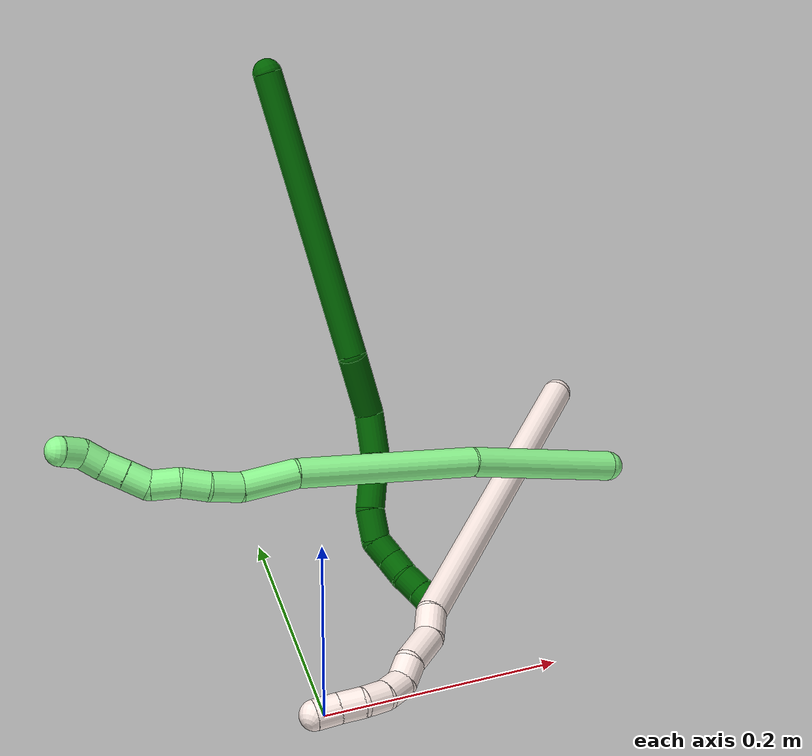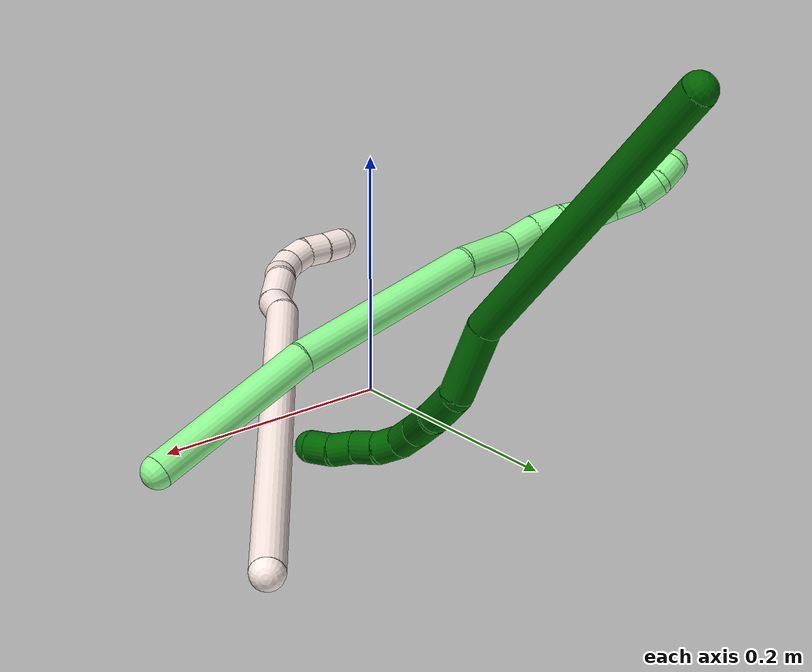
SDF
<sdf version="1.7">
 <world name="default">
  <model name="6">
   <static>0</static>
   <link name="6">
    <collision name="collision-cylinder-e_1_1_4">
     <pose>0.000419 0.022168 -0.123167 -2.96352 0.003348 -0.037497</pose>
     <geometry><cylinder><radius>0.0125</radius><length>0.250293</length></cylinder></geometry>
     <surface>
      <friction><ode><mu>1.16</mu><mu2>1.16</mu2><slip1>0</slip1><slip2>0</slip2></ode></friction>
      <contact><ode><kp>1e+06</kp><kd>1</kd><max_vel>0</max_vel><min_depth>0.001</min_depth></ode></contact>
     </surface>
    </collision>
    <visual name="visual-cylinder-e_1_1_4">
     <pose>0.000419 0.022168 -0.123167 -2.96352 0.003348 -0.037497</pose>
     <geometry><cylinder><radius>0.0125</radius><length>0.250293</length></cylinder></geometry>
     <material><ambient>0 0.392157 0.003922 1</ambient></material>
    </visual>
    <collision name="collision-cylinder-e_2_4_5">
     <pose>0.006885 0.057439 -0.271116 -2.65522 0.21246 -0.811854</pose>
     <geometry><cylinder><radius>0.0125</radius><length>0.057354</length></cylinder></geometry>
     <surface>
      <friction><ode><mu>1.16</mu><mu2>1.16</mu2><slip1>0</slip1><slip2>0</slip2></ode></friction>
      <contact><ode><kp>1e+06</kp><kd>1</kd><max_vel>0</max_vel><min_depth>0.001</min_depth></ode></contact>
     </surface>
    </collision>
    <visual name="visual-cylinder-e_2_4_5">
     <pose>0.006885 0.057439 -0.271116 -2.65522 0.21246 -0.811854</pose>
     <geometry><cylinder><radius>0.0125</radius><length>0.057354</length></cylinder></geometry>
     <material><ambient>0 0.392157 0.003922 1</ambient></material>
    </visual>
    <collision name="collision-cylinder-e_3_5_6">
     <pose>0.009528 0.07331 -0.313328 -2.9841 -0.190529 1.761</pose>
     <geometry><cylinder><radius>0.0125</radius><length>0.035949</length></cylinder></geometry>
     <surface>
      <friction><ode><mu>1.16</mu><mu2>1.16</mu2><slip1>0</slip1><slip2>0</slip2></ode></friction>
      <contact><ode><kp>1e+06</kp><kd>1</kd><max_vel>0</max_vel><min_depth>0.001</min_depth></ode></contact>
     </surface>
    </collision>
    <visual name="visual-cylinder-e_3_5_6">
     <pose>0.009528 0.07331 -0.313328 -2.9841 -0.190529 1.761</pose>
     <geometry><cylinder><radius>0.0125</radius><length>0.035949</length></cylinder></geometry>
     <material><ambient>0 0.392157 0.003922 1</ambient></material>
    </visual>
    <collision name="collision-cylinder-e_4_6_7">
     <pose>-0.005551 0.079002 -0.352067 -3.00525 -0.497307 2.61621</pose>
     <geometry><cylinder><radius>0.0125</radius><length>0.048944</length></cylinder></geometry>
     <surface>
      <friction><ode><mu>1.16</mu><mu2>1.16</mu2><slip1>0</slip1><slip2>0</slip2></ode></friction>
      <contact><ode><kp>1e+06</kp><kd>1</kd><max_vel>0</max_vel><min_depth>0.001</min_depth></ode></contact>
     </surface>
    </collision>
    <visual name="visual-cylinder-e_4_6_7">
     <pose>-0.005551 0.079002 -0.352067 -3.00525 -0.497307 2.61621</pose>
     <geometry><cylinder><radius>0.0125</radius><length>0.048944</length></cylinder></geometry>
     <material><ambient>0 0.392157 0.003922 1</ambient></material>
    </visual>
    <collision name="collision-cylinder-e_5_7_8">
     <pose>-0.020132 0.082619 -0.386697 -3.08955 -0.21457 2.66737</pose>
     <geometry><cylinder><radius>0.0125</radius><length>0.027307</length></cylinder></geometry>
     <surface>
      <friction><ode><mu>1.16</mu><mu2>1.16</mu2><slip1>0</slip1><slip2>0</slip2></ode></friction>
      <contact><ode><kp>1e+06</kp><kd>1</kd><max_vel>0</max_vel><min_depth>0.001</min_depth></ode></contact>
     </surface>
    </collision>
    <visual name="visual-cylinder-e_5_7_8">
     <pose>-0.020132 0.082619 -0.386697 -3.08955 -0.21457 2.66737</pose>
     <geometry><cylinder><radius>0.0125</radius><length>0.027307</length></cylinder></geometry>
     <material><ambient>0 0.392157 0.003922 1</ambient></material>
    </visual>
    <collision name="collision-cylinder-e_6_8_9">
     <pose>-0.021466 0.080485 -0.409551 2.85317 0.156958 0.992616</pose>
     <geometry><cylinder><radius>0.0125</radius><length>0.020132</length></cylinder></geometry>
     <surface>
      <friction><ode><mu>1.16</mu><mu2>1.16</mu2><slip1>0</slip1><slip2>0</slip2></ode></friction>
      <contact><ode><kp>1e+06</kp><kd>1</kd><max_vel>0</max_vel><min_depth>0.001</min_depth></ode></contact>
     </surface>
    </collision>
    <visual name="visual-cylinder-e_6_8_9">
     <pose>-0.021466 0.080485 -0.409551 2.85317 0.156958 0.992616</pose>
     <geometry><cylinder><radius>0.0125</radius><length>0.020132</length></cylinder></geometry>
     <material><ambient>0 0.392157 0.003922 1</ambient></material>
    </visual>
    <collision name="collision-cylinder-e_7_9_10">
     <pose>-0.020274 0.072735 -0.42778 2.62663 -0.038178 -0.144749</pose>
     <geometry><cylinder><radius>0.0125</radius><length>0.020002</length></cylinder></geometry>
     <surface>
      <friction><ode><mu>1.16</mu><mu2>1.16</mu2><slip1>0</slip1><slip2>0</slip2></ode></friction>
      <contact><ode><kp>1e+06</kp><kd>1</kd><max_vel>0</max_vel><min_depth>0.001</min_depth></ode></contact>
     </surface>
    </collision>
    <visual name="visual-cylinder-e_7_9_10">
     <pose>-0.020274 0.072735 -0.42778 2.62663 -0.038178 -0.144749</pose>
     <geometry><cylinder><radius>0.0125</radius><length>0.020002</length></cylinder></geometry>
     <material><ambient>0 0.392157 0.003922 1</ambient></material>
    </visual>
    <collision name="collision-cylinder-e_8_10_11">
     <pose>-0.018871 0.063483 -0.445316 2.686 0.179398 0.740197</pose>
     <geometry><cylinder><radius>0.0125</radius><length>0.020005</length></cylinder></geometry>
     <surface>
      <friction><ode><mu>1.16</mu><mu2>1.16</mu2><slip1>0</slip1><slip2>0</slip2></ode></friction>
      <contact><ode><kp>1e+06</kp><kd>1</kd><max_vel>0</max_vel><min_depth>0.001</min_depth></ode></contact>
     </surface>
    </collision>
    <visual name="visual-cylinder-e_8_10_11">
     <pose>-0.018871 0.063483 -0.445316 2.686 0.179398 0.740197</pose>
     <geometry><cylinder><radius>0.0125</radius><length>0.020005</length></cylinder></geometry>
     <material><ambient>0 0.392157 0.003922 1</ambient></material>
    </visual>
    <collision name="collision-cylinder-e_9_11_2">
     <pose>-0.017493 0.053363 -0.462305 2.52398 -0.040618 -0.127172</pose>
     <geometry><cylinder><radius>0.0125</radius><length>0.020014</length></cylinder></geometry>
     <surface>
      <friction><ode><mu>1.16</mu><mu2>1.16</mu2><slip1>0</slip1><slip2>0</slip2></ode></friction>
      <contact><ode><kp>1e+06</kp><kd>1</kd><max_vel>0</max_vel><min_depth>0.001</min_depth></ode></contact>
     </surface>
    </collision>
    <visual name="visual-cylinder-e_9_11_2">
     <pose>-0.017493 0.053363 -0.462305 2.52398 -0.040618 -0.127172</pose>
     <geometry><cylinder><radius>0.0125</radius><length>0.020014</length></cylinder></geometry>
     <material><ambient>0 0.392157 0.003922 1</ambient></material>
    </visual>
    <collision name="collision-sphere-2">
     <pose>-0.017899 0.047573 -0.470457 0 -0 0</pose>
     <geometry><sphere><radius>0.0125</radius></sphere></geometry>
     <surface>
      <friction><ode><mu>1.16</mu><mu2>1.16</mu2><slip1>0</slip1><slip2>0</slip2></ode></friction>
      <contact><ode><kp>1e+06</kp><kd>1</kd><max_vel>0</max_vel><min_depth>0.001</min_depth></ode></contact>
     </surface>
    </collision>
    <visual name="visual-sphere-2">
     <pose>-0.017899 0.047573 -0.470457 0 -0 0</pose>
     <geometry><sphere><radius>0.0125</radius></sphere></geometry>
     <material><ambient>0 0.392157 0.003922 1</ambient></material>
    </visual>
    <collision name="collision-sphere-11">
     <pose>-0.017087 0.059153 -0.454154 0 -0 0</pose>
     <geometry><sphere><radius>0.0125</radius></sphere></geometry>
     <surface>
      <friction><ode><mu>1.16</mu><mu2>1.16</mu2><slip1>0</slip1><slip2>0</slip2></ode></friction>
      <contact><ode><kp>1e+06</kp><kd>1</kd><max_vel>0</max_vel><min_depth>0.001</min_depth></ode></contact>
     </surface>
    </collision>
    <visual name="visual-sphere-11">
     <pose>-0.017087 0.059153 -0.454154 0 -0 0</pose>
     <geometry><sphere><radius>0.0125</radius></sphere></geometry>
     <material><ambient>0 0.392157 0.003922 1</ambient></material>
    </visual>
    <collision name="collision-sphere-10">
     <pose>-0.020656 0.067813 -0.436478 0 -0 0</pose>
     <geometry><sphere><radius>0.0125</radius></sphere></geometry>
     <surface>
      <friction><ode><mu>1.16</mu><mu2>1.16</mu2><slip1>0</slip1><slip2>0</slip2></ode></friction>
      <contact><ode><kp>1e+06</kp><kd>1</kd><max_vel>0</max_vel><min_depth>0.001</min_depth></ode></contact>
     </surface>
    </collision>
    <visual name="visual-sphere-10">
     <pose>-0.020656 0.067813 -0.436478 0 -0 0</pose>
     <geometry><sphere><radius>0.0125</radius></sphere></geometry>
     <material><ambient>0 0.392157 0.003922 1</ambient></material>
    </visual>
    <collision name="collision-sphere-9">
     <pose>-0.019893 0.077657 -0.419083 0 -0 0</pose>
     <geometry><sphere><radius>0.0125</radius></sphere></geometry>
     <surface>
      <friction><ode><mu>1.16</mu><mu2>1.16</mu2><slip1>0</slip1><slip2>0</slip2></ode></friction>
      <contact><ode><kp>1e+06</kp><kd>1</kd><max_vel>0</max_vel><min_depth>0.001</min_depth></ode></contact>
     </surface>
    </collision>
    <visual name="visual-sphere-9">
     <pose>-0.019893 0.077657 -0.419083 0 -0 0</pose>
     <geometry><sphere><radius>0.0125</radius></sphere></geometry>
     <material><ambient>0 0.392157 0.003922 1</ambient></material>
    </visual>
    <collision name="collision-sphere-4">
     <pose>0.000838 0.044336 -0.246334 0 -0 0</pose>
     <geometry><sphere><radius>0.0125</radius></sphere></geometry>
     <surface>
      <friction><ode><mu>1.16</mu><mu2>1.16</mu2><slip1>0</slip1><slip2>0</slip2></ode></friction>
      <contact><ode><kp>1e+06</kp><kd>1</kd><max_vel>0</max_vel><min_depth>0.001</min_depth></ode></contact>
     </surface>
    </collision>
    <visual name="visual-sphere-4">
     <pose>0.000838 0.044336 -0.246334 0 -0 0</pose>
     <geometry><sphere><radius>0.0125</radius></sphere></geometry>
     <material><ambient>0 0.392157 0.003922 1</ambient></material>
    </visual>
    <collision name="collision-sphere-1">
     <geometry><sphere><radius>0.0125</radius></sphere></geometry>
     <surface>
      <friction><ode><mu>1.16</mu><mu2>1.16</mu2><slip1>0</slip1><slip2>0</slip2></ode></friction>
      <contact><ode><kp>1e+06</kp><kd>1</kd><max_vel>0</max_vel><min_depth>0.001</min_depth></ode></contact>
     </surface>
    </collision>
    <visual name="visual-sphere-1">
     <geometry><sphere><radius>0.0125</radius></sphere></geometry>
     <material><ambient>0 0.392157 0.003922 1</ambient></material>
    </visual>
    <collision name="collision-sphere-8">
     <pose>-0.02304 0.083313 -0.40002 0 -0 0</pose>
     <geometry><sphere><radius>0.0125</radius></sphere></geometry>
     <surface>
      <friction><ode><mu>1.16</mu><mu2>1.16</mu2><slip1>0</slip1><slip2>0</slip2></ode></friction>
      <contact><ode><kp>1e+06</kp><kd>1</kd><max_vel>0</max_vel><min_depth>0.001</min_depth></ode></contact>
     </surface>
    </collision>
    <visual name="visual-sphere-8">
     <pose>-0.02304 0.083313 -0.40002 0 -0 0</pose>
     <geometry><sphere><radius>0.0125</radius></sphere></geometry>
     <material><ambient>0 0.392157 0.003922 1</ambient></material>
    </visual>
    <collision name="collision-sphere-5">
     <pose>0.012932 0.070542 -0.295897 0 -0 0</pose>
     <geometry><sphere><radius>0.0125</radius></sphere></geometry>
     <surface>
      <friction><ode><mu>1.16</mu><mu2>1.16</mu2><slip1>0</slip1><slip2>0</slip2></ode></friction>
      <contact><ode><kp>1e+06</kp><kd>1</kd><max_vel>0</max_vel><min_depth>0.001</min_depth></ode></contact>
     </surface>
    </collision>
    <visual name="visual-sphere-5">
     <pose>0.012932 0.070542 -0.295897 0 -0 0</pose>
     <geometry><sphere><radius>0.0125</radius></sphere></geometry>
     <material><ambient>0 0.392157 0.003922 1</ambient></material>
    </visual>
    <collision name="collision-sphere-6">
     <pose>0.006124 0.076078 -0.330759 0 -0 0</pose>
     <geometry><sphere><radius>0.0125</radius></sphere></geometry>
     <surface>
      <friction><ode><mu>1.16</mu><mu2>1.16</mu2><slip1>0</slip1><slip2>0</slip2></ode></friction>
      <contact><ode><kp>1e+06</kp><kd>1</kd><max_vel>0</max_vel><min_depth>0.001</min_depth></ode></contact>
     </surface>
    </collision>
    <visual name="visual-sphere-6">
     <pose>0.006124 0.076078 -0.330759 0 -0 0</pose>
     <geometry><sphere><radius>0.0125</radius></sphere></geometry>
     <material><ambient>0 0.392157 0.003922 1</ambient></material>
    </visual>
    <collision name="collision-sphere-7">
     <pose>-0.017225 0.081925 -0.373375 0 -0 0</pose>
     <geometry><sphere><radius>0.0125</radius></sphere></geometry>
     <surface>
      <friction><ode><mu>1.16</mu><mu2>1.16</mu2><slip1>0</slip1><slip2>0</slip2></ode></friction>
      <contact><ode><kp>1e+06</kp><kd>1</kd><max_vel>0</max_vel><min_depth>0.001</min_depth></ode></contact>
     </surface>
    </collision>
    <visual name="visual-sphere-7">
     <pose>-0.017225 0.081925 -0.373375 0 -0 0</pose>
     <geometry><sphere><radius>0.0125</radius></sphere></geometry>
     <material><ambient>0 0.392157 0.003922 1</ambient></material>
    </visual>
    <inertial>
     <pose>-0.003089 0.046028 -0.24079 0 -0 0</pose>
     <mass>0.5</mass>
     <inertia>
      <ixx>0.00127</ixx>
      <ixy>0</ixy>
      <ixz>0</ixz>
      <iyy>-0.001339</iyy>
      <iyz>0</iyz>
      <izz>-0.000279</izz>
     </inertia>
    </inertial>
   </link>
   <pose>0.073487 0.406366 0.34958 -0.846406 0.189318 0.396093</pose>
  </model>
  <model name="11">
   <static>0</static>
   <link name="11">
    <collision name="collision-cylinder-e_1_1_4">
     <pose>-0.018997 -0.036397 -0.16333 2.92233 -0.113042 -0.949631</pose>
     <geometry><cylinder><radius>0.0125</radius><length>0.336822</length></cylinder></geometry>
     <surface>
      <friction><ode><mu>1.16</mu><mu2>1.16</mu2><slip1>0</slip1><slip2>0</slip2></ode></friction>
      <contact><ode><kp>1e+06</kp><kd>1</kd><max_vel>0</max_vel><min_depth>0.001</min_depth></ode></contact>
     </surface>
    </collision>
    <visual name="visual-cylinder-e_1_1_4">
     <pose>-0.018997 -0.036397 -0.16333 2.92233 -0.113042 -0.949631</pose>
     <geometry><cylinder><radius>0.0125</radius><length>0.336822</length></cylinder></geometry>
     <material><ambient>1 0.933333 0.909804 1</ambient></material>
    </visual>
    <collision name="collision-cylinder-e_2_4_5">
     <pose>-0.035285 -0.075795 -0.339143 2.90571 0.207949 1.44407</pose>
     <geometry><cylinder><radius>0.0125</radius><length>0.026242</length></cylinder></geometry>
     <surface>
      <friction><ode><mu>1.16</mu><mu2>1.16</mu2><slip1>0</slip1><slip2>0</slip2></ode></friction>
      <contact><ode><kp>1e+06</kp><kd>1</kd><max_vel>0</max_vel><min_depth>0.001</min_depth></ode></contact>
     </surface>
    </collision>
    <visual name="visual-cylinder-e_2_4_5">
     <pose>-0.035285 -0.075795 -0.339143 2.90571 0.207949 1.44407</pose>
     <geometry><cylinder><radius>0.0125</radius><length>0.026242</length></cylinder></geometry>
     <material><ambient>1 0.933333 0.909804 1</ambient></material>
    </visual>
    <collision name="collision-cylinder-e_3_5_6">
     <pose>-0.036375 -0.082116 -0.369007 2.95282 -0.21148 -1.68487</pose>
     <geometry><cylinder><radius>0.0125</radius><length>0.036198</length></cylinder></geometry>
     <surface>
      <friction><ode><mu>1.16</mu><mu2>1.16</mu2><slip1>0</slip1><slip2>0</slip2></ode></friction>
      <contact><ode><kp>1e+06</kp><kd>1</kd><max_vel>0</max_vel><min_depth>0.001</min_depth></ode></contact>
     </surface>
    </collision>
    <visual name="visual-cylinder-e_3_5_6">
     <pose>-0.036375 -0.082116 -0.369007 2.95282 -0.21148 -1.68487</pose>
     <geometry><cylinder><radius>0.0125</radius><length>0.036198</length></cylinder></geometry>
     <material><ambient>1 0.933333 0.909804 1</ambient></material>
    </visual>
    <collision name="collision-cylinder-e_4_6_7">
     <pose>-0.03945 -0.085601 -0.396554 3.12547 0.071196 2.69623</pose>
     <geometry><cylinder><radius>0.0125</radius><length>0.020384</length></cylinder></geometry>
     <surface>
      <friction><ode><mu>1.16</mu><mu2>1.16</mu2><slip1>0</slip1><slip2>0</slip2></ode></friction>
      <contact><ode><kp>1e+06</kp><kd>1</kd><max_vel>0</max_vel><min_depth>0.001</min_depth></ode></contact>
     </surface>
    </collision>
    <visual name="visual-cylinder-e_4_6_7">
     <pose>-0.03945 -0.085601 -0.396554 3.12547 0.071196 2.69623</pose>
     <geometry><cylinder><radius>0.0125</radius><length>0.020384</length></cylinder></geometry>
     <material><ambient>1 0.933333 0.909804 1</ambient></material>
    </visual>
    <collision name="collision-cylinder-e_5_7_8">
     <pose>-0.042713 -0.086275 -0.41606 3.08698 -0.403045 -2.87577</pose>
     <geometry><cylinder><radius>0.0125</radius><length>0.020339</length></cylinder></geometry>
     <surface>
      <friction><ode><mu>1.16</mu><mu2>1.16</mu2><slip1>0</slip1><slip2>0</slip2></ode></friction>
      <contact><ode><kp>1e+06</kp><kd>1</kd><max_vel>0</max_vel><min_depth>0.001</min_depth></ode></contact>
     </surface>
    </collision>
    <visual name="visual-cylinder-e_5_7_8">
     <pose>-0.042713 -0.086275 -0.41606 3.08698 -0.403045 -2.87577</pose>
     <geometry><cylinder><radius>0.0125</radius><length>0.020339</length></cylinder></geometry>
     <material><ambient>1 0.933333 0.909804 1</ambient></material>
    </visual>
    <collision name="collision-cylinder-e_6_8_9">
     <pose>-0.052997 -0.085782 -0.433107 -3.012 -0.680817 2.77922</pose>
     <geometry><cylinder><radius>0.0125</radius><length>0.020003</length></cylinder></geometry>
     <surface>
      <friction><ode><mu>1.16</mu><mu2>1.16</mu2><slip1>0</slip1><slip2>0</slip2></ode></friction>
      <contact><ode><kp>1e+06</kp><kd>1</kd><max_vel>0</max_vel><min_depth>0.001</min_depth></ode></contact>
     </surface>
    </collision>
    <visual name="visual-cylinder-e_6_8_9">
     <pose>-0.052997 -0.085782 -0.433107 -3.012 -0.680817 2.77922</pose>
     <geometry><cylinder><radius>0.0125</radius><length>0.020003</length></cylinder></geometry>
     <material><ambient>1 0.933333 0.909804 1</ambient></material>
    </visual>
    <collision name="collision-cylinder-e_7_9_10">
     <pose>-0.065976 -0.080781 -0.447094 -2.57487 -0.731671 1.84167</pose>
     <geometry><cylinder><radius>0.0125</radius><length>0.02001</length></cylinder></geometry>
     <surface>
      <friction><ode><mu>1.16</mu><mu2>1.16</mu2><slip1>0</slip1><slip2>0</slip2></ode></friction>
      <contact><ode><kp>1e+06</kp><kd>1</kd><max_vel>0</max_vel><min_depth>0.001</min_depth></ode></contact>
     </surface>
    </collision>
    <visual name="visual-cylinder-e_7_9_10">
     <pose>-0.065976 -0.080781 -0.447094 -2.57487 -0.731671 1.84167</pose>
     <geometry><cylinder><radius>0.0125</radius><length>0.02001</length></cylinder></geometry>
     <material><ambient>1 0.933333 0.909804 1</ambient></material>
    </visual>
    <collision name="collision-cylinder-e_8_10_2">
     <pose>-0.079101 -0.073175 -0.460121 -2.65035 -0.699633 1.93751</pose>
     <geometry><cylinder><radius>0.0125</radius><length>0.020001</length></cylinder></geometry>
     <surface>
      <friction><ode><mu>1.16</mu><mu2>1.16</mu2><slip1>0</slip1><slip2>0</slip2></ode></friction>
      <contact><ode><kp>1e+06</kp><kd>1</kd><max_vel>0</max_vel><min_depth>0.001</min_depth></ode></contact>
     </surface>
    </collision>
    <visual name="visual-cylinder-e_8_10_2">
     <pose>-0.079101 -0.073175 -0.460121 -2.65035 -0.699633 1.93751</pose>
     <geometry><cylinder><radius>0.0125</radius><length>0.020001</length></cylinder></geometry>
     <material><ambient>1 0.933333 0.909804 1</ambient></material>
    </visual>
    <collision name="collision-sphere-2">
     <pose>-0.08554 -0.069565 -0.466867 0 -0 0</pose>
     <geometry><sphere><radius>0.0125</radius></sphere></geometry>
     <surface>
      <friction><ode><mu>1.16</mu><mu2>1.16</mu2><slip1>0</slip1><slip2>0</slip2></ode></friction>
      <contact><ode><kp>1e+06</kp><kd>1</kd><max_vel>0</max_vel><min_depth>0.001</min_depth></ode></contact>
     </surface>
    </collision>
    <visual name="visual-sphere-2">
     <pose>-0.08554 -0.069565 -0.466867 0 -0 0</pose>
     <geometry><sphere><radius>0.0125</radius></sphere></geometry>
     <material><ambient>1 0.933333 0.909804 1</ambient></material>
    </visual>
    <collision name="collision-sphere-10">
     <pose>-0.072661 -0.076784 -0.453374 0 -0 0</pose>
     <geometry><sphere><radius>0.0125</radius></sphere></geometry>
     <surface>
      <friction><ode><mu>1.16</mu><mu2>1.16</mu2><slip1>0</slip1><slip2>0</slip2></ode></friction>
      <contact><ode><kp>1e+06</kp><kd>1</kd><max_vel>0</max_vel><min_depth>0.001</min_depth></ode></contact>
     </surface>
    </collision>
    <visual name="visual-sphere-10">
     <pose>-0.072661 -0.076784 -0.453374 0 -0 0</pose>
     <geometry><sphere><radius>0.0125</radius></sphere></geometry>
     <material><ambient>1 0.933333 0.909804 1</ambient></material>
    </visual>
    <collision name="collision-sphere-9">
     <pose>-0.059292 -0.084777 -0.440813 0 -0 0</pose>
     <geometry><sphere><radius>0.0125</radius></sphere></geometry>
     <surface>
      <friction><ode><mu>1.16</mu><mu2>1.16</mu2><slip1>0</slip1><slip2>0</slip2></ode></friction>
      <contact><ode><kp>1e+06</kp><kd>1</kd><max_vel>0</max_vel><min_depth>0.001</min_depth></ode></contact>
     </surface>
    </collision>
    <visual name="visual-sphere-9">
     <pose>-0.059292 -0.084777 -0.440813 0 -0 0</pose>
     <geometry><sphere><radius>0.0125</radius></sphere></geometry>
     <material><ambient>1 0.933333 0.909804 1</ambient></material>
    </visual>
    <collision name="collision-sphere-4">
     <pose>-0.037994 -0.072794 -0.32666 0 -0 0</pose>
     <geometry><sphere><radius>0.0125</radius></sphere></geometry>
     <surface>
      <friction><ode><mu>1.16</mu><mu2>1.16</mu2><slip1>0</slip1><slip2>0</slip2></ode></friction>
      <contact><ode><kp>1e+06</kp><kd>1</kd><max_vel>0</max_vel><min_depth>0.001</min_depth></ode></contact>
     </surface>
    </collision>
    <visual name="visual-sphere-4">
     <pose>-0.037994 -0.072794 -0.32666 0 -0 0</pose>
     <geometry><sphere><radius>0.0125</radius></sphere></geometry>
     <material><ambient>1 0.933333 0.909804 1</ambient></material>
    </visual>
    <collision name="collision-sphere-1">
     <geometry><sphere><radius>0.0125</radius></sphere></geometry>
     <surface>
      <friction><ode><mu>1.16</mu><mu2>1.16</mu2><slip1>0</slip1><slip2>0</slip2></ode></friction>
      <contact><ode><kp>1e+06</kp><kd>1</kd><max_vel>0</max_vel><min_depth>0.001</min_depth></ode></contact>
     </surface>
    </collision>
    <visual name="visual-sphere-1">
     <geometry><sphere><radius>0.0125</radius></sphere></geometry>
     <material><ambient>1 0.933333 0.909804 1</ambient></material>
    </visual>
    <collision name="collision-sphere-8">
     <pose>-0.046702 -0.086786 -0.4254 0 -0 0</pose>
     <geometry><sphere><radius>0.0125</radius></sphere></geometry>
     <surface>
      <friction><ode><mu>1.16</mu><mu2>1.16</mu2><slip1>0</slip1><slip2>0</slip2></ode></friction>
      <contact><ode><kp>1e+06</kp><kd>1</kd><max_vel>0</max_vel><min_depth>0.001</min_depth></ode></contact>
     </surface>
    </collision>
    <visual name="visual-sphere-8">
     <pose>-0.046702 -0.086786 -0.4254 0 -0 0</pose>
     <geometry><sphere><radius>0.0125</radius></sphere></geometry>
     <material><ambient>1 0.933333 0.909804 1</ambient></material>
    </visual>
    <collision name="collision-sphere-5">
     <pose>-0.032576 -0.078795 -0.351626 0 -0 0</pose>
     <geometry><sphere><radius>0.0125</radius></sphere></geometry>
     <surface>
      <friction><ode><mu>1.16</mu><mu2>1.16</mu2><slip1>0</slip1><slip2>0</slip2></ode></friction>
      <contact><ode><kp>1e+06</kp><kd>1</kd><max_vel>0</max_vel><min_depth>0.001</min_depth></ode></contact>
     </surface>
    </collision>
    <visual name="visual-sphere-5">
     <pose>-0.032576 -0.078795 -0.351626 0 -0 0</pose>
     <geometry><sphere><radius>0.0125</radius></sphere></geometry>
     <material><ambient>1 0.933333 0.909804 1</ambient></material>
    </visual>
    <collision name="collision-sphere-6">
     <pose>-0.040175 -0.085437 -0.386389 0 -0 0</pose>
     <geometry><sphere><radius>0.0125</radius></sphere></geometry>
     <surface>
      <friction><ode><mu>1.16</mu><mu2>1.16</mu2><slip1>0</slip1><slip2>0</slip2></ode></friction>
      <contact><ode><kp>1e+06</kp><kd>1</kd><max_vel>0</max_vel><min_depth>0.001</min_depth></ode></contact>
     </surface>
    </collision>
    <visual name="visual-sphere-6">
     <pose>-0.040175 -0.085437 -0.386389 0 -0 0</pose>
     <geometry><sphere><radius>0.0125</radius></sphere></geometry>
     <material><ambient>1 0.933333 0.909804 1</ambient></material>
    </visual>
    <collision name="collision-sphere-7">
     <pose>-0.038725 -0.085765 -0.406719 0 -0 0</pose>
     <geometry><sphere><radius>0.0125</radius></sphere></geometry>
     <surface>
      <friction><ode><mu>1.16</mu><mu2>1.16</mu2><slip1>0</slip1><slip2>0</slip2></ode></friction>
      <contact><ode><kp>1e+06</kp><kd>1</kd><max_vel>0</max_vel><min_depth>0.001</min_depth></ode></contact>
     </surface>
    </collision>
    <visual name="visual-sphere-7">
     <pose>-0.038725 -0.085765 -0.406719 0 -0 0</pose>
     <geometry><sphere><radius>0.0125</radius></sphere></geometry>
     <material><ambient>1 0.933333 0.909804 1</ambient></material>
    </visual>
    <inertial>
     <pose>-0.028553 -0.051033 -0.241258 0 -0 0</pose>
     <mass>0.5</mass>
     <inertia>
      <ixx>-0.000746</ixx>
      <ixy>0</ixy>
      <ixz>0</ixz>
      <iyy>-0.004335</iyy>
      <iyz>0</iyz>
      <izz>0.00102</izz>
     </inertia>
    </inertial>
   </link>
   <pose>0.297118 0.266873 0.042832 -1.44819 0.590283 -0.622903</pose>
  </model>
  <model name="13">
   <static>0</static>
   <link name="13">
    <collision name="collision-cylinder-e_1_1_4">
     <pose>-0.000899 0.000804 -0.067894 -3.12975 -0.013234 1.6816</pose>
     <geometry><cylinder><radius>0.0125</radius><length>0.135809</length></cylinder></geometry>
     <surface>
      <friction><ode><mu>1.16</mu><mu2>1.16</mu2><slip1>0</slip1><slip2>0</slip2></ode></friction>
      <contact><ode><kp>1e+06</kp><kd>1</kd><max_vel>0</max_vel><min_depth>0.001</min_depth></ode></contact>
     </surface>
    </collision>
    <visual name="visual-cylinder-e_1_1_4">
     <pose>-0.000899 0.000804 -0.067894 -3.12975 -0.013234 1.6816</pose>
     <geometry><cylinder><radius>0.0125</radius><length>0.135809</length></cylinder></geometry>
     <material><ambient>0.564706 0.984314 0.572549 1</ambient></material>
    </visual>
    <collision name="collision-cylinder-e_2_4_5">
     <pose>-0.012039 0.008586 -0.214323 -3.05297 -0.129176 1.93968</pose>
     <geometry><cylinder><radius>0.0125</radius><length>0.159013</length></cylinder></geometry>
     <surface>
      <friction><ode><mu>1.16</mu><mu2>1.16</mu2><slip1>0</slip1><slip2>0</slip2></ode></friction>
      <contact><ode><kp>1e+06</kp><kd>1</kd><max_vel>0</max_vel><min_depth>0.001</min_depth></ode></contact>
     </surface>
    </collision>
    <visual name="visual-cylinder-e_2_4_5">
     <pose>-0.012039 0.008586 -0.214323 -3.05297 -0.129176 1.93968</pose>
     <geometry><cylinder><radius>0.0125</radius><length>0.159013</length></cylinder></geometry>
     <material><ambient>0.564706 0.984314 0.572549 1</ambient></material>
    </visual>
    <collision name="collision-cylinder-e_3_5_6">
     <pose>-0.02781 0.021586 -0.315383 -2.8804 -0.23283 1.45492</pose>
     <geometry><cylinder><radius>0.0125</radius><length>0.047927</length></cylinder></geometry>
     <surface>
      <friction><ode><mu>1.16</mu><mu2>1.16</mu2><slip1>0</slip1><slip2>0</slip2></ode></friction>
      <contact><ode><kp>1e+06</kp><kd>1</kd><max_vel>0</max_vel><min_depth>0.001</min_depth></ode></contact>
     </surface>
    </collision>
    <visual name="visual-cylinder-e_3_5_6">
     <pose>-0.02781 0.021586 -0.315383 -2.8804 -0.23283 1.45492</pose>
     <geometry><cylinder><radius>0.0125</radius><length>0.047927</length></cylinder></geometry>
     <material><ambient>0.564706 0.984314 0.572549 1</ambient></material>
    </visual>
    <collision name="collision-cylinder-e_4_6_7">
     <pose>-0.035199 0.027675 -0.351396 -3.13653 -0.137026 3.06788</pose>
     <geometry><cylinder><radius>0.0125</radius><length>0.027231</length></cylinder></geometry>
     <surface>
      <friction><ode><mu>1.16</mu><mu2>1.16</mu2><slip1>0</slip1><slip2>0</slip2></ode></friction>
      <contact><ode><kp>1e+06</kp><kd>1</kd><max_vel>0</max_vel><min_depth>0.001</min_depth></ode></contact>
     </surface>
    </collision>
    <visual name="visual-cylinder-e_4_6_7">
     <pose>-0.035199 0.027675 -0.351396 -3.13653 -0.137026 3.06788</pose>
     <geometry><cylinder><radius>0.0125</radius><length>0.027231</length></cylinder></geometry>
     <material><ambient>0.564706 0.984314 0.572549 1</ambient></material>
    </visual>
    <collision name="collision-cylinder-e_5_7_8">
     <pose>-0.040732 0.026204 -0.376185 3.00619 -0.311547 -2.32644</pose>
     <geometry><cylinder><radius>0.0125</radius><length>0.023964</length></cylinder></geometry>
     <surface>
      <friction><ode><mu>1.16</mu><mu2>1.16</mu2><slip1>0</slip1><slip2>0</slip2></ode></friction>
      <contact><ode><kp>1e+06</kp><kd>1</kd><max_vel>0</max_vel><min_depth>0.001</min_depth></ode></contact>
     </surface>
    </collision>
    <visual name="visual-cylinder-e_5_7_8">
     <pose>-0.040732 0.026204 -0.376185 3.00619 -0.311547 -2.32644</pose>
     <geometry><cylinder><radius>0.0125</radius><length>0.023964</length></cylinder></geometry>
     <material><ambient>0.564706 0.984314 0.572549 1</ambient></material>
    </visual>
    <collision name="collision-cylinder-e_6_8_9">
     <pose>-0.049304 0.025966 -0.39883 -3.02731 -0.405371 2.59862</pose>
     <geometry><cylinder><radius>0.0125</radius><length>0.024851</length></cylinder></geometry>
     <surface>
      <friction><ode><mu>1.16</mu><mu2>1.16</mu2><slip1>0</slip1><slip2>0</slip2></ode></friction>
      <contact><ode><kp>1e+06</kp><kd>1</kd><max_vel>0</max_vel><min_depth>0.001</min_depth></ode></contact>
     </surface>
    </collision>
    <visual name="visual-cylinder-e_6_8_9">
     <pose>-0.049304 0.025966 -0.39883 -3.02731 -0.405371 2.59862</pose>
     <geometry><cylinder><radius>0.0125</radius><length>0.024851</length></cylinder></geometry>
     <material><ambient>0.564706 0.984314 0.572549 1</ambient></material>
    </visual>
    <collision name="collision-cylinder-e_7_9_10">
     <pose>-0.057636 0.023102 -0.419073 2.70371 -0.336007 -1.30256</pose>
     <geometry><cylinder><radius>0.0125</radius><length>0.020817</length></cylinder></geometry>
     <surface>
      <friction><ode><mu>1.16</mu><mu2>1.16</mu2><slip1>0</slip1><slip2>0</slip2></ode></friction>
      <contact><ode><kp>1e+06</kp><kd>1</kd><max_vel>0</max_vel><min_depth>0.001</min_depth></ode></contact>
     </surface>
    </collision>
    <visual name="visual-cylinder-e_7_9_10">
     <pose>-0.057636 0.023102 -0.419073 2.70371 -0.336007 -1.30256</pose>
     <geometry><cylinder><radius>0.0125</radius><length>0.020817</length></cylinder></geometry>
     <material><ambient>0.564706 0.984314 0.572549 1</ambient></material>
    </visual>
    <collision name="collision-cylinder-e_8_10_11">
     <pose>-0.064773 0.015024 -0.436576 2.71494 -0.373554 -1.4347</pose>
     <geometry><cylinder><radius>0.0125</radius><length>0.020303</length></cylinder></geometry>
     <surface>
      <friction><ode><mu>1.16</mu><mu2>1.16</mu2><slip1>0</slip1><slip2>0</slip2></ode></friction>
      <contact><ode><kp>1e+06</kp><kd>1</kd><max_vel>0</max_vel><min_depth>0.001</min_depth></ode></contact>
     </surface>
    </collision>
    <visual name="visual-cylinder-e_8_10_11">
     <pose>-0.064773 0.015024 -0.436576 2.71494 -0.373554 -1.4347</pose>
     <geometry><cylinder><radius>0.0125</radius><length>0.020303</length></cylinder></geometry>
     <material><ambient>0.564706 0.984314 0.572549 1</ambient></material>
    </visual>
    <collision name="collision-cylinder-e_9_11_12">
     <pose>-0.069599 0.006553 -0.454038 2.66622 -0.112104 -0.455196</pose>
     <geometry><cylinder><radius>0.0125</radius><length>0.02005</length></cylinder></geometry>
     <surface>
      <friction><ode><mu>1.16</mu><mu2>1.16</mu2><slip1>0</slip1><slip2>0</slip2></ode></friction>
      <contact><ode><kp>1e+06</kp><kd>1</kd><max_vel>0</max_vel><min_depth>0.001</min_depth></ode></contact>
     </surface>
    </collision>
    <visual name="visual-cylinder-e_9_11_12">
     <pose>-0.069599 0.006553 -0.454038 2.66622 -0.112104 -0.455196</pose>
     <geometry><cylinder><radius>0.0125</radius><length>0.02005</length></cylinder></geometry>
     <material><ambient>0.564706 0.984314 0.572549 1</ambient></material>
    </visual>
    <collision name="collision-cylinder-e_10_12_2">
     <pose>-0.06959 0.001621 -0.472842 3.10412 0.113041 2.50203</pose>
     <geometry><cylinder><radius>0.0125</radius><length>0.020036</length></cylinder></geometry>
     <surface>
      <friction><ode><mu>1.16</mu><mu2>1.16</mu2><slip1>0</slip1><slip2>0</slip2></ode></friction>
      <contact><ode><kp>1e+06</kp><kd>1</kd><max_vel>0</max_vel><min_depth>0.001</min_depth></ode></contact>
     </surface>
    </collision>
    <visual name="visual-cylinder-e_10_12_2">
     <pose>-0.06959 0.001621 -0.472842 3.10412 0.113041 2.50203</pose>
     <geometry><cylinder><radius>0.0125</radius><length>0.020036</length></cylinder></geometry>
     <material><ambient>0.564706 0.984314 0.572549 1</ambient></material>
    </visual>
    <collision name="collision-sphere-2">
     <pose>-0.06846 0.001248 -0.482789 0 -0 0</pose>
     <geometry><sphere><radius>0.0125</radius></sphere></geometry>
     <surface>
      <friction><ode><mu>1.16</mu><mu2>1.16</mu2><slip1>0</slip1><slip2>0</slip2></ode></friction>
      <contact><ode><kp>1e+06</kp><kd>1</kd><max_vel>0</max_vel><min_depth>0.001</min_depth></ode></contact>
     </surface>
    </collision>
    <visual name="visual-sphere-2">
     <pose>-0.06846 0.001248 -0.482789 0 -0 0</pose>
     <geometry><sphere><radius>0.0125</radius></sphere></geometry>
     <material><ambient>0.564706 0.984314 0.572549 1</ambient></material>
    </visual>
    <collision name="collision-sphere-12">
     <pose>-0.07072 0.001994 -0.462895 0 -0 0</pose>
     <geometry><sphere><radius>0.0125</radius></sphere></geometry>
     <surface>
      <friction><ode><mu>1.16</mu><mu2>1.16</mu2><slip1>0</slip1><slip2>0</slip2></ode></friction>
      <contact><ode><kp>1e+06</kp><kd>1</kd><max_vel>0</max_vel><min_depth>0.001</min_depth></ode></contact>
     </surface>
    </collision>
    <visual name="visual-sphere-12">
     <pose>-0.07072 0.001994 -0.462895 0 -0 0</pose>
     <geometry><sphere><radius>0.0125</radius></sphere></geometry>
     <material><ambient>0.564706 0.984314 0.572549 1</ambient></material>
    </visual>
    <collision name="collision-sphere-11">
     <pose>-0.068477 0.011112 -0.44518 0 -0 0</pose>
     <geometry><sphere><radius>0.0125</radius></sphere></geometry>
     <surface>
      <friction><ode><mu>1.16</mu><mu2>1.16</mu2><slip1>0</slip1><slip2>0</slip2></ode></friction>
      <contact><ode><kp>1e+06</kp><kd>1</kd><max_vel>0</max_vel><min_depth>0.001</min_depth></ode></contact>
     </surface>
    </collision>
    <visual name="visual-sphere-11">
     <pose>-0.068477 0.011112 -0.44518 0 -0 0</pose>
     <geometry><sphere><radius>0.0125</radius></sphere></geometry>
     <material><ambient>0.564706 0.984314 0.572549 1</ambient></material>
    </visual>
    <collision name="collision-sphere-10">
     <pose>-0.061068 0.018935 -0.427972 0 -0 0</pose>
     <geometry><sphere><radius>0.0125</radius></sphere></geometry>
     <surface>
      <friction><ode><mu>1.16</mu><mu2>1.16</mu2><slip1>0</slip1><slip2>0</slip2></ode></friction>
      <contact><ode><kp>1e+06</kp><kd>1</kd><max_vel>0</max_vel><min_depth>0.001</min_depth></ode></contact>
     </surface>
    </collision>
    <visual name="visual-sphere-10">
     <pose>-0.061068 0.018935 -0.427972 0 -0 0</pose>
     <geometry><sphere><radius>0.0125</radius></sphere></geometry>
     <material><ambient>0.564706 0.984314 0.572549 1</ambient></material>
    </visual>
    <collision name="collision-sphere-9">
     <pose>-0.054205 0.027268 -0.410174 0 -0 0</pose>
     <geometry><sphere><radius>0.0125</radius></sphere></geometry>
     <surface>
      <friction><ode><mu>1.16</mu><mu2>1.16</mu2><slip1>0</slip1><slip2>0</slip2></ode></friction>
      <contact><ode><kp>1e+06</kp><kd>1</kd><max_vel>0</max_vel><min_depth>0.001</min_depth></ode></contact>
     </surface>
    </collision>
    <visual name="visual-sphere-9">
     <pose>-0.054205 0.027268 -0.410174 0 -0 0</pose>
     <geometry><sphere><radius>0.0125</radius></sphere></geometry>
     <material><ambient>0.564706 0.984314 0.572549 1</ambient></material>
    </visual>
    <collision name="collision-sphere-4">
     <pose>-0.001797 0.001608 -0.135788 0 -0 0</pose>
     <geometry><sphere><radius>0.0125</radius></sphere></geometry>
     <surface>
      <friction><ode><mu>1.16</mu><mu2>1.16</mu2><slip1>0</slip1><slip2>0</slip2></ode></friction>
      <contact><ode><kp>1e+06</kp><kd>1</kd><max_vel>0</max_vel><min_depth>0.001</min_depth></ode></contact>
     </surface>
    </collision>
    <visual name="visual-sphere-4">
     <pose>-0.001797 0.001608 -0.135788 0 -0 0</pose>
     <geometry><sphere><radius>0.0125</radius></sphere></geometry>
     <material><ambient>0.564706 0.984314 0.572549 1</ambient></material>
    </visual>
    <collision name="collision-sphere-1">
     <geometry><sphere><radius>0.0125</radius></sphere></geometry>
     <surface>
      <friction><ode><mu>1.16</mu><mu2>1.16</mu2><slip1>0</slip1><slip2>0</slip2></ode></friction>
      <contact><ode><kp>1e+06</kp><kd>1</kd><max_vel>0</max_vel><min_depth>0.001</min_depth></ode></contact>
     </surface>
    </collision>
    <visual name="visual-sphere-1">
     <geometry><sphere><radius>0.0125</radius></sphere></geometry>
     <material><ambient>0.564706 0.984314 0.572549 1</ambient></material>
    </visual>
    <collision name="collision-sphere-8">
     <pose>-0.044404 0.024664 -0.387486 0 -0 0</pose>
     <geometry><sphere><radius>0.0125</radius></sphere></geometry>
     <surface>
      <friction><ode><mu>1.16</mu><mu2>1.16</mu2><slip1>0</slip1><slip2>0</slip2></ode></friction>
      <contact><ode><kp>1e+06</kp><kd>1</kd><max_vel>0</max_vel><min_depth>0.001</min_depth></ode></contact>
     </surface>
    </collision>
    <visual name="visual-sphere-8">
     <pose>-0.044404 0.024664 -0.387486 0 -0 0</pose>
     <geometry><sphere><radius>0.0125</radius></sphere></geometry>
     <material><ambient>0.564706 0.984314 0.572549 1</ambient></material>
    </visual>
    <collision name="collision-sphere-5">
     <pose>-0.022281 0.015564 -0.292857 0 -0 0</pose>
     <geometry><sphere><radius>0.0125</radius></sphere></geometry>
     <surface>
      <friction><ode><mu>1.16</mu><mu2>1.16</mu2><slip1>0</slip1><slip2>0</slip2></ode></friction>
      <contact><ode><kp>1e+06</kp><kd>1</kd><max_vel>0</max_vel><min_depth>0.001</min_depth></ode></contact>
     </surface>
    </collision>
    <visual name="visual-sphere-5">
     <pose>-0.022281 0.015564 -0.292857 0 -0 0</pose>
     <geometry><sphere><radius>0.0125</radius></sphere></geometry>
     <material><ambient>0.564706 0.984314 0.572549 1</ambient></material>
    </visual>
    <collision name="collision-sphere-6">
     <pose>-0.033339 0.027607 -0.337909 0 -0 0</pose>
     <geometry><sphere><radius>0.0125</radius></sphere></geometry>
     <surface>
      <friction><ode><mu>1.16</mu><mu2>1.16</mu2><slip1>0</slip1><slip2>0</slip2></ode></friction>
      <contact><ode><kp>1e+06</kp><kd>1</kd><max_vel>0</max_vel><min_depth>0.001</min_depth></ode></contact>
     </surface>
    </collision>
    <visual name="visual-sphere-6">
     <pose>-0.033339 0.027607 -0.337909 0 -0 0</pose>
     <geometry><sphere><radius>0.0125</radius></sphere></geometry>
     <material><ambient>0.564706 0.984314 0.572549 1</ambient></material>
    </visual>
    <collision name="collision-sphere-7">
     <pose>-0.037059 0.027743 -0.364884 0 -0 0</pose>
     <geometry><sphere><radius>0.0125</radius></sphere></geometry>
     <surface>
      <friction><ode><mu>1.16</mu><mu2>1.16</mu2><slip1>0</slip1><slip2>0</slip2></ode></friction>
      <contact><ode><kp>1e+06</kp><kd>1</kd><max_vel>0</max_vel><min_depth>0.001</min_depth></ode></contact>
     </surface>
    </collision>
    <visual name="visual-sphere-7">
     <pose>-0.037059 0.027743 -0.364884 0 -0 0</pose>
     <geometry><sphere><radius>0.0125</radius></sphere></geometry>
     <material><ambient>0.564706 0.984314 0.572549 1</ambient></material>
    </visual>
    <inertial>
     <pose>-0.023667 0.010971 -0.246151 0 -0 0</pose>
     <mass>0.5</mass>
     <inertia>
      <ixx>0.000381</ixx>
      <ixy>0</ixy>
      <ixz>0</ixz>
      <iyy>0.000692</iyy>
      <iyz>0</iyz>
      <izz>-1.9e-05</izz>
     </inertia>
    </inertial>
   </link>
   <pose>0.297897 0.142766 0.067756 -2.08737 -0.723248 -1.15448</pose>
  </model>
 </world>
</sdf>
